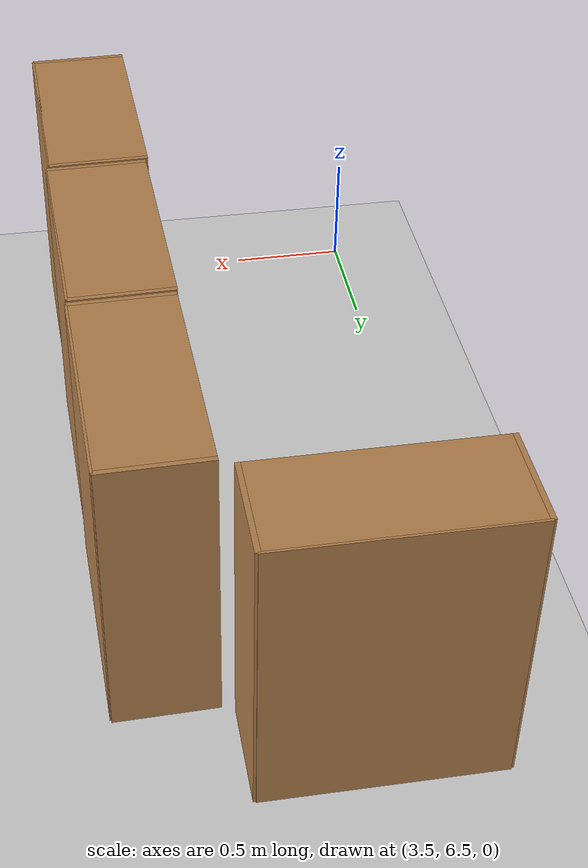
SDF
<sdf version="1.6">
 <world name="default">
  <model name="ground_plane">
   <static>1</static>
   <link name="link">
    <collision name="collision">
     <geometry><plane><normal>0 0 1</normal><size>100 100</size></plane></geometry>
     <surface>
      <contact><collide_bitmask>65535</collide_bitmask></contact>
      <friction><ode><mu>100</mu><mu2>50</mu2></ode></friction>
     </surface>
    </collision>
    <visual name="visual">
     <cast_shadows>0</cast_shadows>
     <geometry><plane><normal>0 0 1</normal><size>100 100</size></plane></geometry>
     <material>
      <script><uri>file://media/materials/scripts/gazebo.material</uri><name>Gazebo/Grey</name></script>
     </material>
    </visual>
   </link>
  </model>
  <model name="bookshelf">
   <static>1</static>
   <link name="link">
    <inertial><mass>1</mass></inertial>
    <collision name="back">
     <pose>0 0.005 0.6 0 -0 0</pose>
     <geometry><box><size>0.9 0.01 1.2</size></box></geometry>
    </collision>
    <visual name="visual1">
     <pose>0 0.005 0.6 0 -0 0</pose>
     <geometry><box><size>0.9 0.01 1.2</size></box></geometry>
     <material>
      <script><uri>file://media/materials/scripts/gazebo.material</uri><name>Gazebo/Wood</name></script>
     </material>
    </visual>
    <collision name="left_side">
     <pose>0.45 -0.195 0.6 0 -0 0</pose>
     <geometry><box><size>0.02 0.4 1.2</size></box></geometry>
    </collision>
    <visual name="visual2">
     <pose>0.45 -0.195 0.6 0 -0 0</pose>
     <geometry><box><size>0.02 0.4 1.2</size></box></geometry>
     <material>
      <script><uri>file://media/materials/scripts/gazebo.material</uri><name>Gazebo/Wood</name></script>
     </material>
    </visual>
    <collision name="right_side">
     <pose>-0.45 -0.195 0.6 0 -0 0</pose>
     <geometry><box><size>0.02 0.4 1.2</size></box></geometry>
    </collision>
    <visual name="visual3">
     <pose>-0.45 -0.195 0.6 0 -0 0</pose>
     <geometry><box><size>0.02 0.4 1.2</size></box></geometry>
     <material>
      <script><uri>file://media/materials/scripts/gazebo.material</uri><name>Gazebo/Wood</name></script>
     </material>
    </visual>
    <collision name="bottom">
     <pose>0 -0.195 0.03 0 -0 0</pose>
     <geometry><box><size>0.88 0.4 0.06</size></box></geometry>
    </collision>
    <visual name="visual4">
     <pose>0 -0.195 0.03 0 -0 0</pose>
     <geometry><box><size>0.88 0.4 0.06</size></box></geometry>
     <material>
      <script><uri>file://media/materials/scripts/gazebo.material</uri><name>Gazebo/Wood</name></script>
     </material>
    </visual>
    <collision name="top">
     <pose>0 -0.195 1.19 0 -0 0</pose>
     <geometry><box><size>0.88 0.4 0.02</size></box></geometry>
    </collision>
    <visual name="visual5">
     <pose>0 -0.195 1.19 0 -0 0</pose>
     <geometry><box><size>0.88 0.4 0.02</size></box></geometry>
     <material>
      <script><uri>file://media/materials/scripts/gazebo.material</uri><name>Gazebo/Wood</name></script>
     </material>
    </visual>
    <collision name="low_shelf">
     <pose>0 -0.195 0.43 0 -0 0</pose>
     <geometry><box><size>0.88 0.4 0.02</size></box></geometry>
    </collision>
    <visual name="visual6">
     <pose>0 -0.195 0.43 0 -0 0</pose>
     <geometry><box><size>0.88 0.4 0.02</size></box></geometry>
     <material>
      <script><uri>file://media/materials/scripts/gazebo.material</uri><name>Gazebo/Wood</name></script>
     </material>
    </visual>
    <collision name="high_shelf">
     <pose>0 -0.195 0.8 0 -0 0</pose>
     <geometry><box><size>0.88 0.4 0.02</size></box></geometry>
    </collision>
    <visual name="visual7">
     <pose>0 -0.195 0.8 0 -0 0</pose>
     <geometry><box><size>0.88 0.4 0.02</size></box></geometry>
     <material>
      <script><uri>file://media/materials/scripts/gazebo.material</uri><name>Gazebo/Wood</name></script>
     </material>
    </visual>
   </link>
   <pose>3.98709 9.71457 0 0 -0 0</pose>
  </model>
  <model name="bookshelf_clone">
   <static>1</static>
   <link name="link">
    <inertial><mass>1</mass></inertial>
    <collision name="back">
     <pose>0 0.005 0.6 0 -0 0</pose>
     <geometry><box><size>0.9 0.01 1.2</size></box></geometry>
    </collision>
    <visual name="visual1">
     <pose>0 0.005 0.6 0 -0 0</pose>
     <geometry><box><size>0.9 0.01 1.2</size></box></geometry>
     <material>
      <script><uri>file://media/materials/scripts/gazebo.material</uri><name>Gazebo/Wood</name></script>
     </material>
    </visual>
    <collision name="left_side">
     <pose>0.45 -0.195 0.6 0 -0 0</pose>
     <geometry><box><size>0.02 0.4 1.2</size></box></geometry>
    </collision>
    <visual name="visual2">
     <pose>0.45 -0.195 0.6 0 -0 0</pose>
     <geometry><box><size>0.02 0.4 1.2</size></box></geometry>
     <material>
      <script><uri>file://media/materials/scripts/gazebo.material</uri><name>Gazebo/Wood</name></script>
     </material>
    </visual>
    <collision name="right_side">
     <pose>-0.45 -0.195 0.6 0 -0 0</pose>
     <geometry><box><size>0.02 0.4 1.2</size></box></geometry>
    </collision>
    <visual name="visual3">
     <pose>-0.45 -0.195 0.6 0 -0 0</pose>
     <geometry><box><size>0.02 0.4 1.2</size></box></geometry>
     <material>
      <script><uri>file://media/materials/scripts/gazebo.material</uri><name>Gazebo/Wood</name></script>
     </material>
    </visual>
    <collision name="bottom">
     <pose>0 -0.195 0.03 0 -0 0</pose>
     <geometry><box><size>0.88 0.4 0.06</size></box></geometry>
    </collision>
    <visual name="visual4">
     <pose>0 -0.195 0.03 0 -0 0</pose>
     <geometry><box><size>0.88 0.4 0.06</size></box></geometry>
     <material>
      <script><uri>file://media/materials/scripts/gazebo.material</uri><name>Gazebo/Wood</name></script>
     </material>
    </visual>
    <collision name="top">
     <pose>0 -0.195 1.19 0 -0 0</pose>
     <geometry><box><size>0.88 0.4 0.02</size></box></geometry>
    </collision>
    <visual name="visual5">
     <pose>0 -0.195 1.19 0 -0 0</pose>
     <geometry><box><size>0.88 0.4 0.02</size></box></geometry>
     <material>
      <script><uri>file://media/materials/scripts/gazebo.material</uri><name>Gazebo/Wood</name></script>
     </material>
    </visual>
    <collision name="low_shelf">
     <pose>0 -0.195 0.43 0 -0 0</pose>
     <geometry><box><size>0.88 0.4 0.02</size></box></geometry>
    </collision>
    <visual name="visual6">
     <pose>0 -0.195 0.43 0 -0 0</pose>
     <geometry><box><size>0.88 0.4 0.02</size></box></geometry>
     <material>
      <script><uri>file://media/materials/scripts/gazebo.material</uri><name>Gazebo/Wood</name></script>
     </material>
    </visual>
    <collision name="high_shelf">
     <pose>0 -0.195 0.8 0 -0 0</pose>
     <geometry><box><size>0.88 0.4 0.02</size></box></geometry>
    </collision>
    <visual name="visual7">
     <pose>0 -0.195 0.8 0 -0 0</pose>
     <geometry><box><size>0.88 0.4 0.02</size></box></geometry>
     <material>
      <script><uri>file://media/materials/scripts/gazebo.material</uri><name>Gazebo/Wood</name></script>
     </material>
    </visual>
   </link>
   <pose>4.89771 8.84904 0 0 0 -1.55013</pose>
  </model>
  <model name="bookshelf_clone_clone">
   <static>1</static>
   <link name="link">
    <inertial><mass>1</mass></inertial>
    <collision name="back">
     <pose>0 0.005 0.6 0 -0 0</pose>
     <geometry><box><size>0.9 0.01 1.2</size></box></geometry>
    </collision>
    <visual name="visual1">
     <pose>0 0.005 0.6 0 -0 0</pose>
     <geometry><box><size>0.9 0.01 1.2</size></box></geometry>
     <material>
      <script><uri>file://media/materials/scripts/gazebo.material</uri><name>Gazebo/Wood</name></script>
     </material>
    </visual>
    <collision name="left_side">
     <pose>0.45 -0.195 0.6 0 -0 0</pose>
     <geometry><box><size>0.02 0.4 1.2</size></box></geometry>
    </collision>
    <visual name="visual2">
     <pose>0.45 -0.195 0.6 0 -0 0</pose>
     <geometry><box><size>0.02 0.4 1.2</size></box></geometry>
     <material>
      <script><uri>file://media/materials/scripts/gazebo.material</uri><name>Gazebo/Wood</name></script>
     </material>
    </visual>
    <collision name="right_side">
     <pose>-0.45 -0.195 0.6 0 -0 0</pose>
     <geometry><box><size>0.02 0.4 1.2</size></box></geometry>
    </collision>
    <visual name="visual3">
     <pose>-0.45 -0.195 0.6 0 -0 0</pose>
     <geometry><box><size>0.02 0.4 1.2</size></box></geometry>
     <material>
      <script><uri>file://media/materials/scripts/gazebo.material</uri><name>Gazebo/Wood</name></script>
     </material>
    </visual>
    <collision name="bottom">
     <pose>0 -0.195 0.03 0 -0 0</pose>
     <geometry><box><size>0.88 0.4 0.06</size></box></geometry>
    </collision>
    <visual name="visual4">
     <pose>0 -0.195 0.03 0 -0 0</pose>
     <geometry><box><size>0.88 0.4 0.06</size></box></geometry>
     <material>
      <script><uri>file://media/materials/scripts/gazebo.material</uri><name>Gazebo/Wood</name></script>
     </material>
    </visual>
    <collision name="top">
     <pose>0 -0.195 1.19 0 -0 0</pose>
     <geometry><box><size>0.88 0.4 0.02</size></box></geometry>
    </collision>
    <visual name="visual5">
     <pose>0 -0.195 1.19 0 -0 0</pose>
     <geometry><box><size>0.88 0.4 0.02</size></box></geometry>
     <material>
      <script><uri>file://media/materials/scripts/gazebo.material</uri><name>Gazebo/Wood</name></script>
     </material>
    </visual>
    <collision name="low_shelf">
     <pose>0 -0.195 0.43 0 -0 0</pose>
     <geometry><box><size>0.88 0.4 0.02</size></box></geometry>
    </collision>
    <visual name="visual6">
     <pose>0 -0.195 0.43 0 -0 0</pose>
     <geometry><box><size>0.88 0.4 0.02</size></box></geometry>
     <material>
      <script><uri>file://media/materials/scripts/gazebo.material</uri><name>Gazebo/Wood</name></script>
     </material>
    </visual>
    <collision name="high_shelf">
     <pose>0 -0.195 0.8 0 -0 0</pose>
     <geometry><box><size>0.88 0.4 0.02</size></box></geometry>
    </collision>
    <visual name="visual7">
     <pose>0 -0.195 0.8 0 -0 0</pose>
     <geometry><box><size>0.88 0.4 0.02</size></box></geometry>
     <material>
      <script><uri>file://media/materials/scripts/gazebo.material</uri><name>Gazebo/Wood</name></script>
     </material>
    </visual>
   </link>
   <pose>4.91193 7.92091 0 0 0 -1.55013</pose>
  </model>
  <model name="bookshelf_clone_clone_0">
   <static>1</static>
   <link name="link">
    <inertial><mass>1</mass></inertial>
    <collision name="back">
     <pose>0 0.005 0.6 0 -0 0</pose>
     <geometry><box><size>0.9 0.01 1.2</size></box></geometry>
    </collision>
    <visual name="visual1">
     <pose>0 0.005 0.6 0 -0 0</pose>
     <geometry><box><size>0.9 0.01 1.2</size></box></geometry>
     <material>
      <script><uri>file://media/materials/scripts/gazebo.material</uri><name>Gazebo/Wood</name></script>
     </material>
    </visual>
    <collision name="left_side">
     <pose>0.45 -0.195 0.6 0 -0 0</pose>
     <geometry><box><size>0.02 0.4 1.2</size></box></geometry>
    </collision>
    <visual name="visual2">
     <pose>0.45 -0.195 0.6 0 -0 0</pose>
     <geometry><box><size>0.02 0.4 1.2</size></box></geometry>
     <material>
      <script><uri>file://media/materials/scripts/gazebo.material</uri><name>Gazebo/Wood</name></script>
     </material>
    </visual>
    <collision name="right_side">
     <pose>-0.45 -0.195 0.6 0 -0 0</pose>
     <geometry><box><size>0.02 0.4 1.2</size></box></geometry>
    </collision>
    <visual name="visual3">
     <pose>-0.45 -0.195 0.6 0 -0 0</pose>
     <geometry><box><size>0.02 0.4 1.2</size></box></geometry>
     <material>
      <script><uri>file://media/materials/scripts/gazebo.material</uri><name>Gazebo/Wood</name></script>
     </material>
    </visual>
    <collision name="bottom">
     <pose>0 -0.195 0.03 0 -0 0</pose>
     <geometry><box><size>0.88 0.4 0.06</size></box></geometry>
    </collision>
    <visual name="visual4">
     <pose>0 -0.195 0.03 0 -0 0</pose>
     <geometry><box><size>0.88 0.4 0.06</size></box></geometry>
     <material>
      <script><uri>file://media/materials/scripts/gazebo.material</uri><name>Gazebo/Wood</name></script>
     </material>
    </visual>
    <collision name="top">
     <pose>0 -0.195 1.19 0 -0 0</pose>
     <geometry><box><size>0.88 0.4 0.02</size></box></geometry>
    </collision>
    <visual name="visual5">
     <pose>0 -0.195 1.19 0 -0 0</pose>
     <geometry><box><size>0.88 0.4 0.02</size></box></geometry>
     <material>
      <script><uri>file://media/materials/scripts/gazebo.material</uri><name>Gazebo/Wood</name></script>
     </material>
    </visual>
    <collision name="low_shelf">
     <pose>0 -0.195 0.43 0 -0 0</pose>
     <geometry><box><size>0.88 0.4 0.02</size></box></geometry>
    </collision>
    <visual name="visual6">
     <pose>0 -0.195 0.43 0 -0 0</pose>
     <geometry><box><size>0.88 0.4 0.02</size></box></geometry>
     <material>
      <script><uri>file://media/materials/scripts/gazebo.material</uri><name>Gazebo/Wood</name></script>
     </material>
    </visual>
    <collision name="high_shelf">
     <pose>0 -0.195 0.8 0 -0 0</pose>
     <geometry><box><size>0.88 0.4 0.02</size></box></geometry>
    </collision>
    <visual name="visual7">
     <pose>0 -0.195 0.8 0 -0 0</pose>
     <geometry><box><size>0.88 0.4 0.02</size></box></geometry>
     <material>
      <script><uri>file://media/materials/scripts/gazebo.material</uri><name>Gazebo/Wood</name></script>
     </material>
    </visual>
   </link>
   <pose>4.91984 6.99164 0 0 0 -1.55013</pose>
  </model>
 </world>
</sdf>
